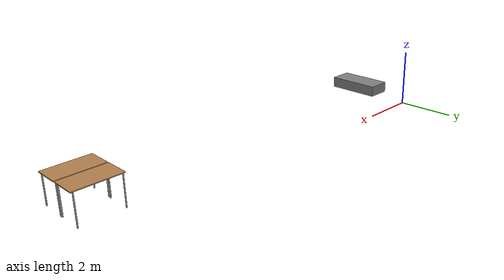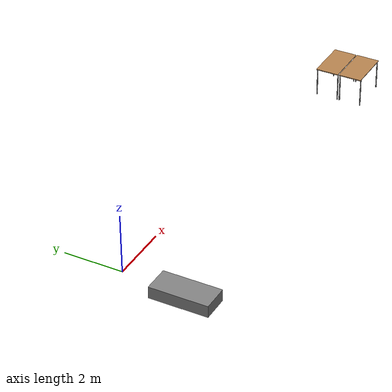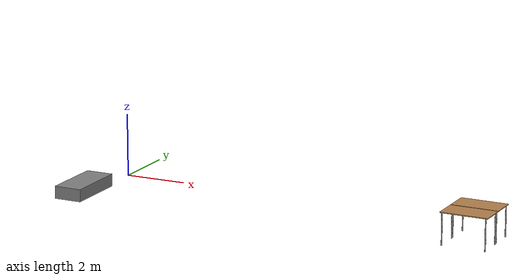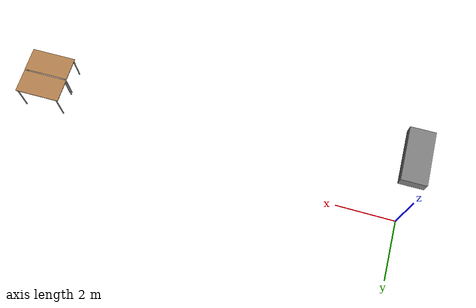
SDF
<sdf version="1.6">
 <world name="office_world">
  <physics name="1ms" type="ignored">
   <max_step_size>0.001</max_step_size>
   <real_time_factor>1.0</real_time_factor>
  </physics>
  <plugin filename="ignition-gazebo-contact-system" name="gz::sim::systems::Contact"/>
  <plugin filename="ignition-gazebo-imu-system" name="gz::sim::systems::Imu"/>
  <plugin filename="ignition-gazebo-physics-system" name="gz::sim::systems::Physics"/>
  <plugin filename="ignition-gazebo-scene-broadcaster-system" name="gz::sim::systems::SceneBroadcaster"/>
  <plugin filename="ignition-gazebo-sensors-system" name="gz::sim::systems::Sensors"/>
  <plugin filename="ignition-gazebo-user-commands-system" name="gz::sim::systems::UserCommands"/>
  <spherical_coordinates>
   <surface_model>EARTH_WGS84</surface_model>
   <world_frame_orientation>ENU</world_frame_orientation>
   <latitude_deg>50.088280</latitude_deg>
   <longitude_deg>19.938931</longitude_deg>
   <elevation>0</elevation>
   <heading_deg>0</heading_deg>
  </spherical_coordinates>
  <scene>
   <ambient>0.8 0.8 0.8 1</ambient>
   <background>1 1 1 1</background>
   <grid>1</grid>
   <shadows>0</shadows>
  </scene>
  <light name="sun" type="directional">
   <cast_shadows>0</cast_shadows>
   <pose>0 0 10 0 -0 0</pose>
   <diffuse>0.8 0.8 0.8 1</diffuse>
   <specular>0.2 0.2 0.2 1</specular>
   <attenuation>
    <range>1000</range>
    <constant>0.9</constant>
    <linear>0.01</linear>
    <quadratic>0.001</quadratic>
   </attenuation>
   <direction>-0.5 0.1 -0.9</direction>
   <spot><inner_angle>0</inner_angle><outer_angle>0</outer_angle><falloff>0</falloff></spot>
  </light>
  <model name="OpenRobotics/Table">
   <static>1</static>
   <link name="link">
    <collision name="surface">
     <pose>0 0 1 0 -0 0</pose>
     <geometry><box><size>1.5 0.8 0.03</size></box></geometry>
     <surface><friction><ode><mu>0.6</mu><mu2>0.6</mu2></ode></friction></surface>
    </collision>
    <visual name="visual1">
     <pose>0 0 1 0 -0 0</pose>
     <geometry><box><size>1.5 0.8 0.03</size></box></geometry>
     <material>
      <diffuse>1 1 1 1</diffuse>
      <script><uri>file://media/materials/scripts/gazebo.material</uri><name>Gazebo/Wood</name></script>
      <pbr>
       <metal>
        <albedo_map>https://fuel.gazebosim.org/1.0/openrobotics/models/table/3/files/Table_Diffuse.jpg</albedo_map>
       </metal>
      </pbr>
     </material>
    </visual>
    <collision name="front_left_leg">
     <pose>0.68 0.38 0.5 0 -0 0</pose>
     <geometry><cylinder><radius>0.02</radius><length>1</length></cylinder></geometry>
    </collision>
    <visual name="front_left_leg">
     <pose>0.68 0.38 0.5 0 -0 0</pose>
     <geometry><cylinder><radius>0.02</radius><length>1</length></cylinder></geometry>
     <material>
      <diffuse>0.5 0.5 0.5 1</diffuse>
      <script><uri>file://media/materials/scripts/gazebo.material</uri><name>Gazebo/Grey</name></script>
     </material>
    </visual>
    <collision name="front_right_leg">
     <pose>0.68 -0.38 0.5 0 -0 0</pose>
     <geometry><cylinder><radius>0.02</radius><length>1</length></cylinder></geometry>
    </collision>
    <visual name="front_right_leg">
     <pose>0.68 -0.38 0.5 0 -0 0</pose>
     <geometry><cylinder><radius>0.02</radius><length>1</length></cylinder></geometry>
     <material>
      <diffuse>0.5 0.5 0.5 1</diffuse>
      <script><uri>file://media/materials/scripts/gazebo.material</uri><name>Gazebo/Grey</name></script>
     </material>
    </visual>
    <collision name="back_right_leg">
     <pose>-0.68 -0.38 0.5 0 -0 0</pose>
     <geometry><cylinder><radius>0.02</radius><length>1</length></cylinder></geometry>
    </collision>
    <visual name="back_right_leg">
     <pose>-0.68 -0.38 0.5 0 -0 0</pose>
     <geometry><cylinder><radius>0.02</radius><length>1</length></cylinder></geometry>
     <material>
      <diffuse>0.5 0.5 0.5 1</diffuse>
      <script><uri>file://media/materials/scripts/gazebo.material</uri><name>Gazebo/Grey</name></script>
     </material>
    </visual>
    <collision name="back_left_leg">
     <pose>-0.68 0.38 0.5 0 -0 0</pose>
     <geometry><cylinder><radius>0.02</radius><length>1</length></cylinder></geometry>
    </collision>
    <visual name="back_left_leg">
     <pose>-0.68 0.38 0.5 0 -0 0</pose>
     <geometry><cylinder><radius>0.02</radius><length>1</length></cylinder></geometry>
     <material>
      <diffuse>0.5 0.5 0.5 1</diffuse>
      <script><uri>file://media/materials/scripts/gazebo.material</uri><name>Gazebo/Grey</name></script>
     </material>
    </visual>
   </link>
   <pose>12.483 -1.10033 0 0 0 -3.14</pose>
  </model>
  <model name="OpenRobotics/Table_2">
   <static>1</static>
   <link name="link">
    <collision name="surface">
     <pose>0 0 1 0 -0 0</pose>
     <geometry><box><size>1.5 0.8 0.03</size></box></geometry>
     <surface><friction><ode><mu>0.6</mu><mu2>0.6</mu2></ode></friction></surface>
    </collision>
    <visual name="visual1">
     <pose>0 0 1 0 -0 0</pose>
     <geometry><box><size>1.5 0.8 0.03</size></box></geometry>
     <material>
      <diffuse>1 1 1 1</diffuse>
      <script><uri>file://media/materials/scripts/gazebo.material</uri><name>Gazebo/Wood</name></script>
      <pbr>
       <metal>
        <albedo_map>https://fuel.gazebosim.org/1.0/openrobotics/models/table/3/files/Table_Diffuse.jpg</albedo_map>
       </metal>
      </pbr>
     </material>
    </visual>
    <collision name="front_left_leg">
     <pose>0.68 0.38 0.5 0 -0 0</pose>
     <geometry><cylinder><radius>0.02</radius><length>1</length></cylinder></geometry>
    </collision>
    <visual name="front_left_leg">
     <pose>0.68 0.38 0.5 0 -0 0</pose>
     <geometry><cylinder><radius>0.02</radius><length>1</length></cylinder></geometry>
     <material>
      <diffuse>0.5 0.5 0.5 1</diffuse>
      <script><uri>file://media/materials/scripts/gazebo.material</uri><name>Gazebo/Grey</name></script>
     </material>
    </visual>
    <collision name="front_right_leg">
     <pose>0.68 -0.38 0.5 0 -0 0</pose>
     <geometry><cylinder><radius>0.02</radius><length>1</length></cylinder></geometry>
    </collision>
    <visual name="front_right_leg">
     <pose>0.68 -0.38 0.5 0 -0 0</pose>
     <geometry><cylinder><radius>0.02</radius><length>1</length></cylinder></geometry>
     <material>
      <diffuse>0.5 0.5 0.5 1</diffuse>
      <script><uri>file://media/materials/scripts/gazebo.material</uri><name>Gazebo/Grey</name></script>
     </material>
    </visual>
    <collision name="back_right_leg">
     <pose>-0.68 -0.38 0.5 0 -0 0</pose>
     <geometry><cylinder><radius>0.02</radius><length>1</length></cylinder></geometry>
    </collision>
    <visual name="back_right_leg">
     <pose>-0.68 -0.38 0.5 0 -0 0</pose>
     <geometry><cylinder><radius>0.02</radius><length>1</length></cylinder></geometry>
     <material>
      <diffuse>0.5 0.5 0.5 1</diffuse>
      <script><uri>file://media/materials/scripts/gazebo.material</uri><name>Gazebo/Grey</name></script>
     </material>
    </visual>
    <collision name="back_left_leg">
     <pose>-0.68 0.38 0.5 0 -0 0</pose>
     <geometry><cylinder><radius>0.02</radius><length>1</length></cylinder></geometry>
    </collision>
    <visual name="back_left_leg">
     <pose>-0.68 0.38 0.5 0 -0 0</pose>
     <geometry><cylinder><radius>0.02</radius><length>1</length></cylinder></geometry>
     <material>
      <diffuse>0.5 0.5 0.5 1</diffuse>
      <script><uri>file://media/materials/scripts/gazebo.material</uri><name>Gazebo/Grey</name></script>
     </material>
    </visual>
   </link>
   <pose>12.4903 -1.93794 0 0 0 -3.139</pose>
  </model>
  <model name="Shelf_1">
   <static>1</static>
   <pose>-0.273934 -2.28745 0.2 0 0 -1.56696</pose>
   <link name="shelf_link">
    <collision name="body_collision"><geometry><box><size>1.9638 0.8878 0.4</size></box></geometry></collision>
    <visual name="body_visual">
     <material>
      <ambient>0.4 0.4 0.4 1</ambient>
      <diffuse>0.5 0.5 0.5 1</diffuse>
      <specular>0 0 0 0</specular>
      <emissive>0 0 0 1</emissive>
     </material>
     <geometry><box><size>1.9638 0.8878 0.4</size></box></geometry>
    </visual>
   </link>
  </model>
  <gravity>0 0 -9.8</gravity>
  <magnetic_field>6e-06 2.3e-05 -4.2e-05</magnetic_field>
  <atmosphere type="adiabatic"/>
  <physics type="ode">
   <max_step_size>0.001</max_step_size>
   <real_time_factor>1</real_time_factor>
   <real_time_update_rate>250</real_time_update_rate>
  </physics>
  <spherical_coordinates>
   <surface_model>EARTH_WGS84</surface_model>
   <latitude_deg>0</latitude_deg>
   <longitude_deg>0</longitude_deg>
   <elevation>0</elevation>
   <heading_deg>0</heading_deg>
  </spherical_coordinates>
 </world>
</sdf>
